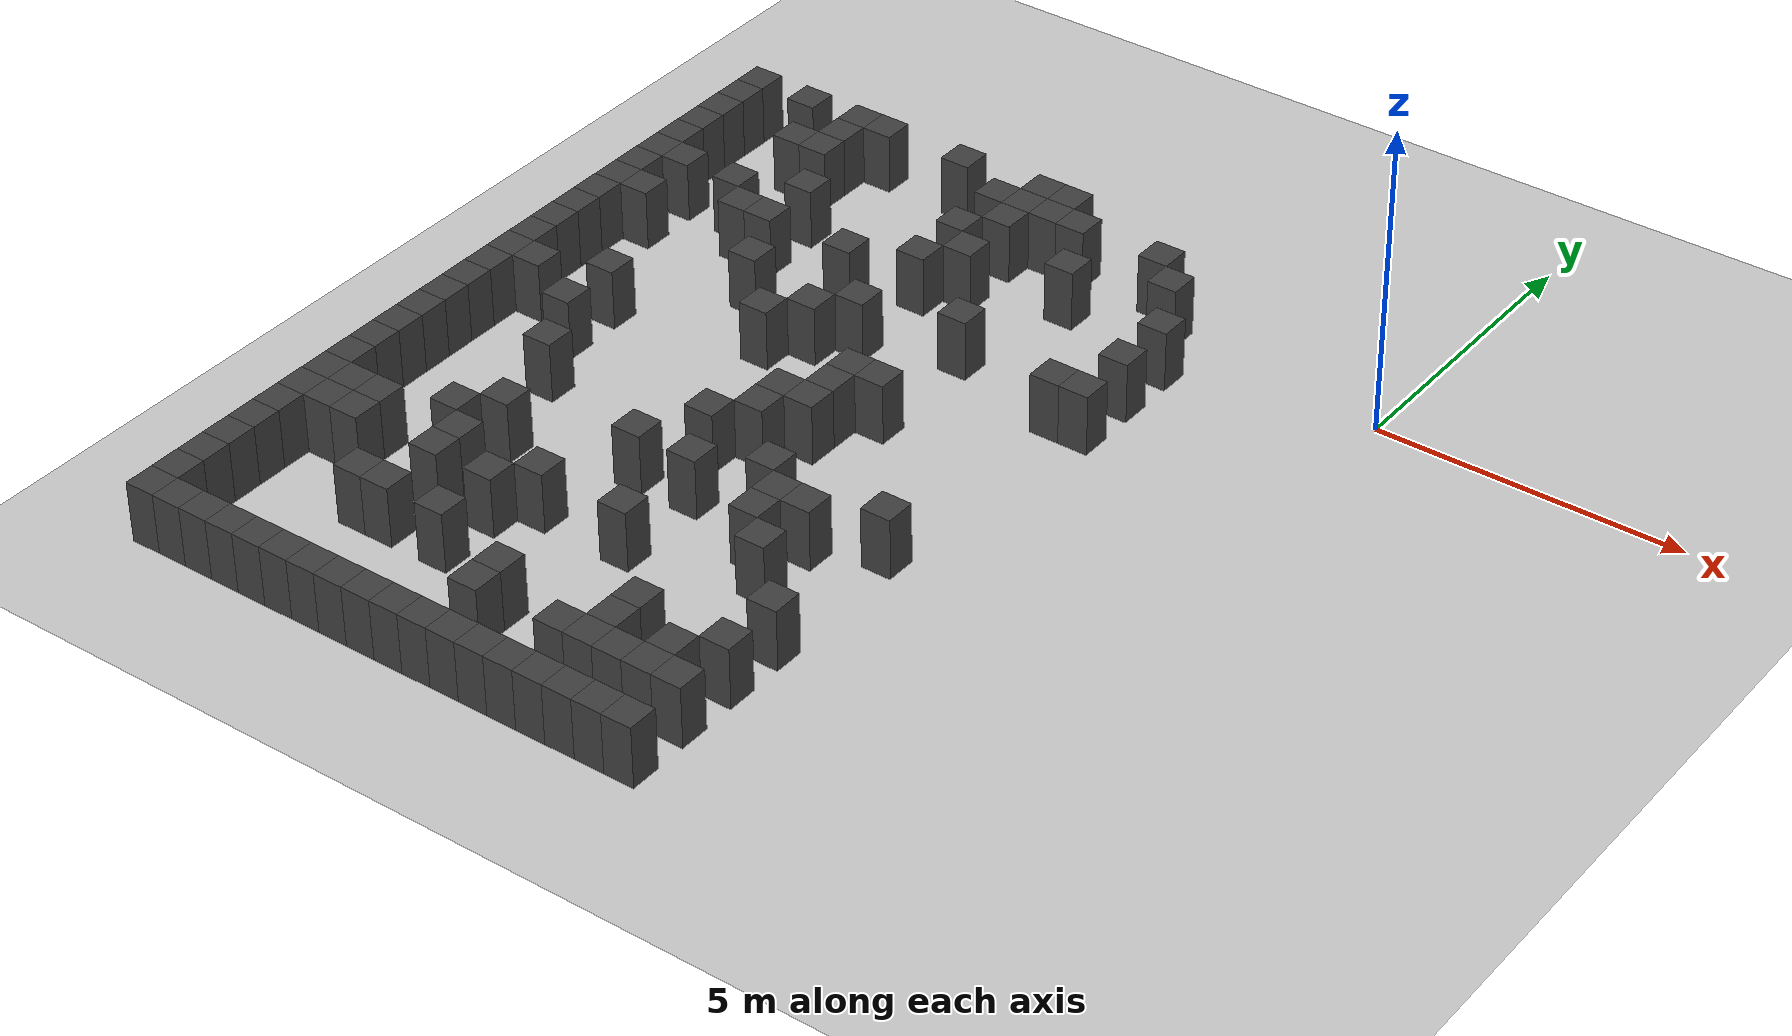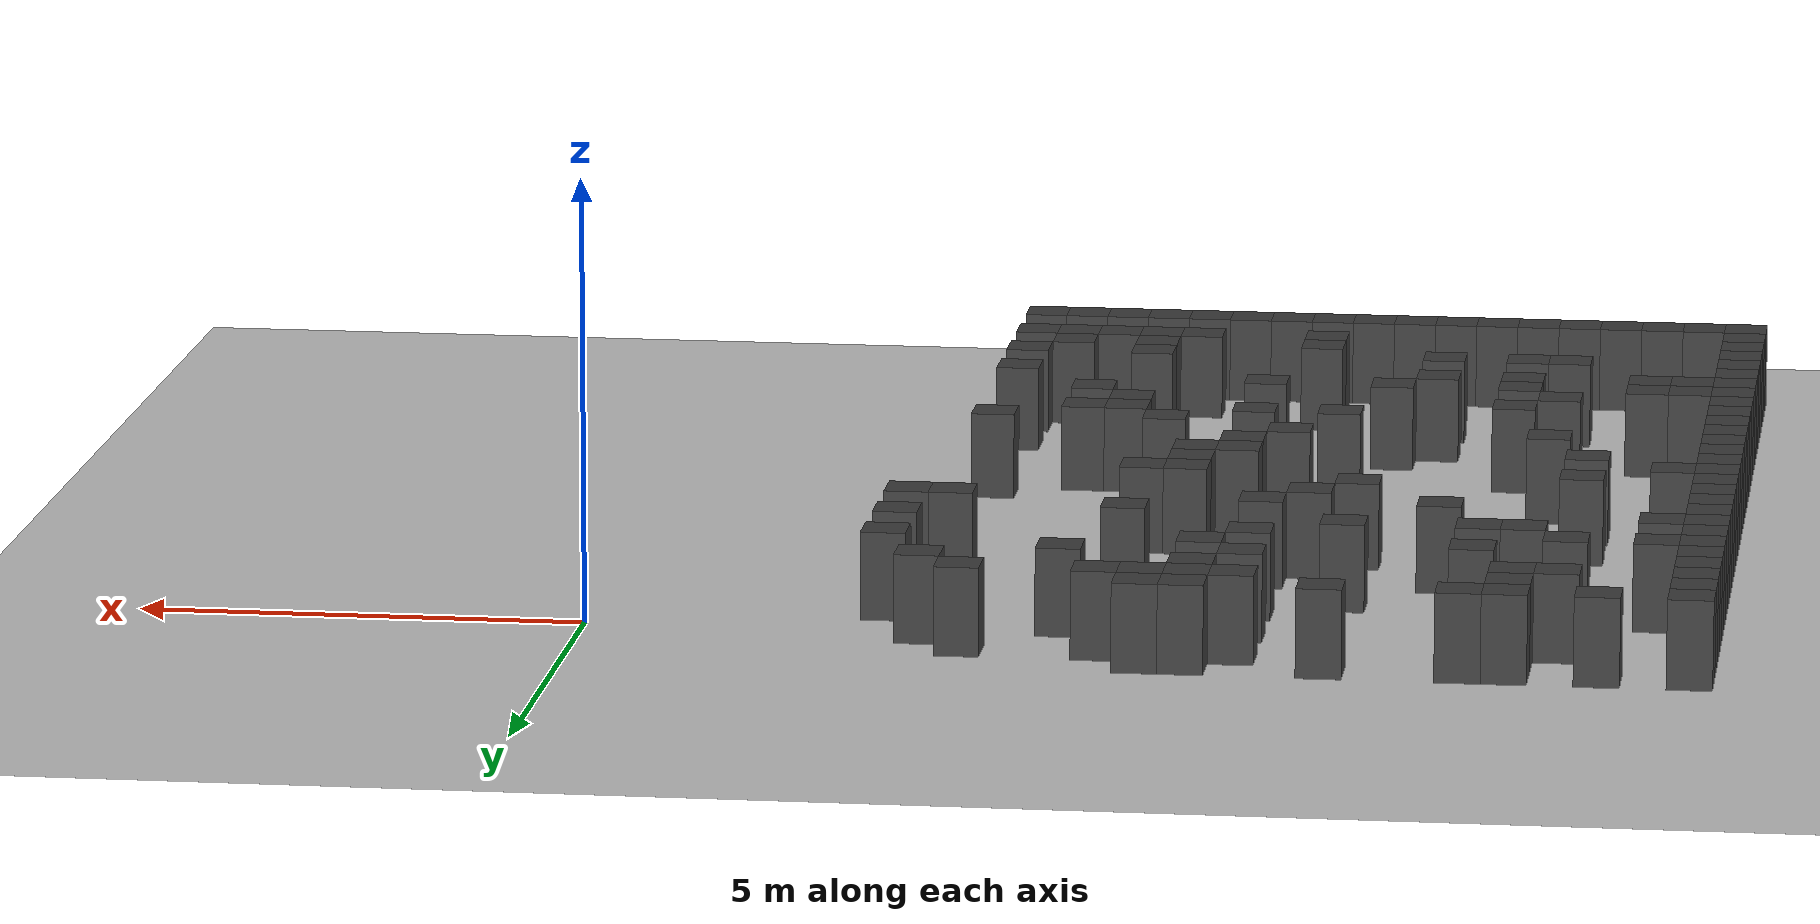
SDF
<sdf version="1.7">
 <world name="map_3891">
  <model name="ground_plane">
   <static>true</static>
   <link name="link">
    <collision name="collision">
     <geometry><plane><normal>0 0 1</normal><size>200 200</size></plane></geometry>
    </collision>
    <visual name="visual">
     <geometry><plane><normal>0 0 1</normal><size>200 200</size></plane></geometry>
     <material><ambient>0.8 0.8 0.8 1</ambient><diffuse>0.8 0.8 0.8 1</diffuse></material>
    </visual>
   </link>
  </model>
  <model name="maze_environment">
   <static>true</static>
   <link name="wall_296">
    <pose>-12.250 1.250 0.500 0 0 0</pose>
    <collision name="col"><geometry><box><size>0.5 0.5 1.0</size></box></geometry></collision>
    <visual name="vis">
     <geometry><box><size>0.5 0.5 1.0</size></box></geometry>
     <material><ambient>0.15 0.15 0.15 1</ambient><diffuse>0.25 0.25 0.25 1</diffuse></material>
    </visual>
   </link>
   <link name="wall_297">
    <pose>-11.250 1.250 0.500 0 0 0</pose>
    <collision name="col"><geometry><box><size>0.5 0.5 1.0</size></box></geometry></collision>
    <visual name="vis">
     <geometry><box><size>0.5 0.5 1.0</size></box></geometry>
     <material><ambient>0.15 0.15 0.15 1</ambient><diffuse>0.25 0.25 0.25 1</diffuse></material>
    </visual>
   </link>
   <link name="wall_298">
    <pose>-10.250 1.250 0.500 0 0 0</pose>
    <collision name="col"><geometry><box><size>0.5 0.5 1.0</size></box></geometry></collision>
    <visual name="vis">
     <geometry><box><size>0.5 0.5 1.0</size></box></geometry>
     <material><ambient>0.15 0.15 0.15 1</ambient><diffuse>0.25 0.25 0.25 1</diffuse></material>
    </visual>
   </link>
   <link name="wall_299">
    <pose>-9.750 1.250 0.500 0 0 0</pose>
    <collision name="col"><geometry><box><size>0.5 0.5 1.0</size></box></geometry></collision>
    <visual name="vis">
     <geometry><box><size>0.5 0.5 1.0</size></box></geometry>
     <material><ambient>0.15 0.15 0.15 1</ambient><diffuse>0.25 0.25 0.25 1</diffuse></material>
    </visual>
   </link>
   <link name="wall_300">
    <pose>-8.250 1.250 0.500 0 0 0</pose>
    <collision name="col"><geometry><box><size>0.5 0.5 1.0</size></box></geometry></collision>
    <visual name="vis">
     <geometry><box><size>0.5 0.5 1.0</size></box></geometry>
     <material><ambient>0.15 0.15 0.15 1</ambient><diffuse>0.25 0.25 0.25 1</diffuse></material>
    </visual>
   </link>
   <link name="wall_301">
    <pose>-6.750 1.250 0.500 0 0 0</pose>
    <collision name="col"><geometry><box><size>0.5 0.5 1.0</size></box></geometry></collision>
    <visual name="vis">
     <geometry><box><size>0.5 0.5 1.0</size></box></geometry>
     <material><ambient>0.15 0.15 0.15 1</ambient><diffuse>0.25 0.25 0.25 1</diffuse></material>
    </visual>
   </link>
   <link name="wall_302">
    <pose>-6.250 1.250 0.500 0 0 0</pose>
    <collision name="col"><geometry><box><size>0.5 0.5 1.0</size></box></geometry></collision>
    <visual name="vis">
     <geometry><box><size>0.5 0.5 1.0</size></box></geometry>
     <material><ambient>0.15 0.15 0.15 1</ambient><diffuse>0.25 0.25 0.25 1</diffuse></material>
    </visual>
   </link>
   <link name="wall_312">
    <pose>-12.250 0.750 0.500 0 0 0</pose>
    <collision name="col"><geometry><box><size>0.5 0.5 1.0</size></box></geometry></collision>
    <visual name="vis">
     <geometry><box><size>0.5 0.5 1.0</size></box></geometry>
     <material><ambient>0.15 0.15 0.15 1</ambient><diffuse>0.25 0.25 0.25 1</diffuse></material>
    </visual>
   </link>
   <link name="wall_313">
    <pose>-10.250 0.750 0.500 0 0 0</pose>
    <collision name="col"><geometry><box><size>0.5 0.5 1.0</size></box></geometry></collision>
    <visual name="vis">
     <geometry><box><size>0.5 0.5 1.0</size></box></geometry>
     <material><ambient>0.15 0.15 0.15 1</ambient><diffuse>0.25 0.25 0.25 1</diffuse></material>
    </visual>
   </link>
   <link name="wall_314">
    <pose>-7.250 0.750 0.500 0 0 0</pose>
    <collision name="col"><geometry><box><size>0.5 0.5 1.0</size></box></geometry></collision>
    <visual name="vis">
     <geometry><box><size>0.5 0.5 1.0</size></box></geometry>
     <material><ambient>0.15 0.15 0.15 1</ambient><diffuse>0.25 0.25 0.25 1</diffuse></material>
    </visual>
   </link>
   <link name="wall_315">
    <pose>-6.750 0.750 0.500 0 0 0</pose>
    <collision name="col"><geometry><box><size>0.5 0.5 1.0</size></box></geometry></collision>
    <visual name="vis">
     <geometry><box><size>0.5 0.5 1.0</size></box></geometry>
     <material><ambient>0.15 0.15 0.15 1</ambient><diffuse>0.25 0.25 0.25 1</diffuse></material>
    </visual>
   </link>
   <link name="wall_316">
    <pose>-6.250 0.750 0.500 0 0 0</pose>
    <collision name="col"><geometry><box><size>0.5 0.5 1.0</size></box></geometry></collision>
    <visual name="vis">
     <geometry><box><size>0.5 0.5 1.0</size></box></geometry>
     <material><ambient>0.15 0.15 0.15 1</ambient><diffuse>0.25 0.25 0.25 1</diffuse></material>
    </visual>
   </link>
   <link name="wall_317">
    <pose>-5.750 0.750 0.500 0 0 0</pose>
    <collision name="col"><geometry><box><size>0.5 0.5 1.0</size></box></geometry></collision>
    <visual name="vis">
     <geometry><box><size>0.5 0.5 1.0</size></box></geometry>
     <material><ambient>0.15 0.15 0.15 1</ambient><diffuse>0.25 0.25 0.25 1</diffuse></material>
    </visual>
   </link>
   <link name="wall_318">
    <pose>-4.250 0.750 0.500 0 0 0</pose>
    <collision name="col"><geometry><box><size>0.5 0.5 1.0</size></box></geometry></collision>
    <visual name="vis">
     <geometry><box><size>0.5 0.5 1.0</size></box></geometry>
     <material><ambient>0.15 0.15 0.15 1</ambient><diffuse>0.25 0.25 0.25 1</diffuse></material>
    </visual>
   </link>
   <link name="wall_324">
    <pose>-12.250 0.250 0.500 0 0 0</pose>
    <collision name="col"><geometry><box><size>0.5 0.5 1.0</size></box></geometry></collision>
    <visual name="vis">
     <geometry><box><size>0.5 0.5 1.0</size></box></geometry>
     <material><ambient>0.15 0.15 0.15 1</ambient><diffuse>0.25 0.25 0.25 1</diffuse></material>
    </visual>
   </link>
   <link name="wall_325">
    <pose>-10.750 0.250 0.500 0 0 0</pose>
    <collision name="col"><geometry><box><size>0.5 0.5 1.0</size></box></geometry></collision>
    <visual name="vis">
     <geometry><box><size>0.5 0.5 1.0</size></box></geometry>
     <material><ambient>0.15 0.15 0.15 1</ambient><diffuse>0.25 0.25 0.25 1</diffuse></material>
    </visual>
   </link>
   <link name="wall_326">
    <pose>-10.250 0.250 0.500 0 0 0</pose>
    <collision name="col"><geometry><box><size>0.5 0.5 1.0</size></box></geometry></collision>
    <visual name="vis">
     <geometry><box><size>0.5 0.5 1.0</size></box></geometry>
     <material><ambient>0.15 0.15 0.15 1</ambient><diffuse>0.25 0.25 0.25 1</diffuse></material>
    </visual>
   </link>
   <link name="wall_327">
    <pose>-6.750 0.250 0.500 0 0 0</pose>
    <collision name="col"><geometry><box><size>0.5 0.5 1.0</size></box></geometry></collision>
    <visual name="vis">
     <geometry><box><size>0.5 0.5 1.0</size></box></geometry>
     <material><ambient>0.15 0.15 0.15 1</ambient><diffuse>0.25 0.25 0.25 1</diffuse></material>
    </visual>
   </link>
   <link name="wall_328">
    <pose>-3.750 0.250 0.500 0 0 0</pose>
    <collision name="col"><geometry><box><size>0.5 0.5 1.0</size></box></geometry></collision>
    <visual name="vis">
     <geometry><box><size>0.5 0.5 1.0</size></box></geometry>
     <material><ambient>0.15 0.15 0.15 1</ambient><diffuse>0.25 0.25 0.25 1</diffuse></material>
    </visual>
   </link>
   <link name="wall_336">
    <pose>-12.250 -0.250 0.500 0 0 0</pose>
    <collision name="col"><geometry><box><size>0.5 0.5 1.0</size></box></geometry></collision>
    <visual name="vis">
     <geometry><box><size>0.5 0.5 1.0</size></box></geometry>
     <material><ambient>0.15 0.15 0.15 1</ambient><diffuse>0.25 0.25 0.25 1</diffuse></material>
    </visual>
   </link>
   <link name="wall_337">
    <pose>-7.250 -0.250 0.500 0 0 0</pose>
    <collision name="col"><geometry><box><size>0.5 0.5 1.0</size></box></geometry></collision>
    <visual name="vis">
     <geometry><box><size>0.5 0.5 1.0</size></box></geometry>
     <material><ambient>0.15 0.15 0.15 1</ambient><diffuse>0.25 0.25 0.25 1</diffuse></material>
    </visual>
   </link>
   <link name="wall_338">
    <pose>-5.250 -0.250 0.500 0 0 0</pose>
    <collision name="col"><geometry><box><size>0.5 0.5 1.0</size></box></geometry></collision>
    <visual name="vis">
     <geometry><box><size>0.5 0.5 1.0</size></box></geometry>
     <material><ambient>0.15 0.15 0.15 1</ambient><diffuse>0.25 0.25 0.25 1</diffuse></material>
    </visual>
   </link>
   <link name="wall_345">
    <pose>-12.250 -0.750 0.500 0 0 0</pose>
    <collision name="col"><geometry><box><size>0.5 0.5 1.0</size></box></geometry></collision>
    <visual name="vis">
     <geometry><box><size>0.5 0.5 1.0</size></box></geometry>
     <material><ambient>0.15 0.15 0.15 1</ambient><diffuse>0.25 0.25 0.25 1</diffuse></material>
    </visual>
   </link>
   <link name="wall_346">
    <pose>-9.750 -0.750 0.500 0 0 0</pose>
    <collision name="col"><geometry><box><size>0.5 0.5 1.0</size></box></geometry></collision>
    <visual name="vis">
     <geometry><box><size>0.5 0.5 1.0</size></box></geometry>
     <material><ambient>0.15 0.15 0.15 1</ambient><diffuse>0.25 0.25 0.25 1</diffuse></material>
    </visual>
   </link>
   <link name="wall_347">
    <pose>-6.750 -0.750 0.500 0 0 0</pose>
    <collision name="col"><geometry><box><size>0.5 0.5 1.0</size></box></geometry></collision>
    <visual name="vis">
     <geometry><box><size>0.5 0.5 1.0</size></box></geometry>
     <material><ambient>0.15 0.15 0.15 1</ambient><diffuse>0.25 0.25 0.25 1</diffuse></material>
    </visual>
   </link>
   <link name="wall_348">
    <pose>-3.250 -0.750 0.500 0 0 0</pose>
    <collision name="col"><geometry><box><size>0.5 0.5 1.0</size></box></geometry></collision>
    <visual name="vis">
     <geometry><box><size>0.5 0.5 1.0</size></box></geometry>
     <material><ambient>0.15 0.15 0.15 1</ambient><diffuse>0.25 0.25 0.25 1</diffuse></material>
    </visual>
   </link>
   <link name="wall_354">
    <pose>-12.250 -1.250 0.500 0 0 0</pose>
    <collision name="col"><geometry><box><size>0.5 0.5 1.0</size></box></geometry></collision>
    <visual name="vis">
     <geometry><box><size>0.5 0.5 1.0</size></box></geometry>
     <material><ambient>0.15 0.15 0.15 1</ambient><diffuse>0.25 0.25 0.25 1</diffuse></material>
    </visual>
   </link>
   <link name="wall_355">
    <pose>-11.750 -1.250 0.500 0 0 0</pose>
    <collision name="col"><geometry><box><size>0.5 0.5 1.0</size></box></geometry></collision>
    <visual name="vis">
     <geometry><box><size>0.5 0.5 1.0</size></box></geometry>
     <material><ambient>0.15 0.15 0.15 1</ambient><diffuse>0.25 0.25 0.25 1</diffuse></material>
    </visual>
   </link>
   <link name="wall_356">
    <pose>-10.750 -1.250 0.500 0 0 0</pose>
    <collision name="col"><geometry><box><size>0.5 0.5 1.0</size></box></geometry></collision>
    <visual name="vis">
     <geometry><box><size>0.5 0.5 1.0</size></box></geometry>
     <material><ambient>0.15 0.15 0.15 1</ambient><diffuse>0.25 0.25 0.25 1</diffuse></material>
    </visual>
   </link>
   <link name="wall_357">
    <pose>-7.250 -1.250 0.500 0 0 0</pose>
    <collision name="col"><geometry><box><size>0.5 0.5 1.0</size></box></geometry></collision>
    <visual name="vis">
     <geometry><box><size>0.5 0.5 1.0</size></box></geometry>
     <material><ambient>0.15 0.15 0.15 1</ambient><diffuse>0.25 0.25 0.25 1</diffuse></material>
    </visual>
   </link>
   <link name="wall_364">
    <pose>-12.250 -1.750 0.500 0 0 0</pose>
    <collision name="col"><geometry><box><size>0.5 0.5 1.0</size></box></geometry></collision>
    <visual name="vis">
     <geometry><box><size>0.5 0.5 1.0</size></box></geometry>
     <material><ambient>0.15 0.15 0.15 1</ambient><diffuse>0.25 0.25 0.25 1</diffuse></material>
    </visual>
   </link>
   <link name="wall_365">
    <pose>-10.250 -1.750 0.500 0 0 0</pose>
    <collision name="col"><geometry><box><size>0.5 0.5 1.0</size></box></geometry></collision>
    <visual name="vis">
     <geometry><box><size>0.5 0.5 1.0</size></box></geometry>
     <material><ambient>0.15 0.15 0.15 1</ambient><diffuse>0.25 0.25 0.25 1</diffuse></material>
    </visual>
   </link>
   <link name="wall_366">
    <pose>-9.750 -1.750 0.500 0 0 0</pose>
    <collision name="col"><geometry><box><size>0.5 0.5 1.0</size></box></geometry></collision>
    <visual name="vis">
     <geometry><box><size>0.5 0.5 1.0</size></box></geometry>
     <material><ambient>0.15 0.15 0.15 1</ambient><diffuse>0.25 0.25 0.25 1</diffuse></material>
    </visual>
   </link>
   <link name="wall_367">
    <pose>-8.250 -1.750 0.500 0 0 0</pose>
    <collision name="col"><geometry><box><size>0.5 0.5 1.0</size></box></geometry></collision>
    <visual name="vis">
     <geometry><box><size>0.5 0.5 1.0</size></box></geometry>
     <material><ambient>0.15 0.15 0.15 1</ambient><diffuse>0.25 0.25 0.25 1</diffuse></material>
    </visual>
   </link>
   <link name="wall_368">
    <pose>-3.250 -1.750 0.500 0 0 0</pose>
    <collision name="col"><geometry><box><size>0.5 0.5 1.0</size></box></geometry></collision>
    <visual name="vis">
     <geometry><box><size>0.5 0.5 1.0</size></box></geometry>
     <material><ambient>0.15 0.15 0.15 1</ambient><diffuse>0.25 0.25 0.25 1</diffuse></material>
    </visual>
   </link>
   <link name="wall_375">
    <pose>-12.250 -2.250 0.500 0 0 0</pose>
    <collision name="col"><geometry><box><size>0.5 0.5 1.0</size></box></geometry></collision>
    <visual name="vis">
     <geometry><box><size>0.5 0.5 1.0</size></box></geometry>
     <material><ambient>0.15 0.15 0.15 1</ambient><diffuse>0.25 0.25 0.25 1</diffuse></material>
    </visual>
   </link>
   <link name="wall_376">
    <pose>-11.750 -2.250 0.500 0 0 0</pose>
    <collision name="col"><geometry><box><size>0.5 0.5 1.0</size></box></geometry></collision>
    <visual name="vis">
     <geometry><box><size>0.5 0.5 1.0</size></box></geometry>
     <material><ambient>0.15 0.15 0.15 1</ambient><diffuse>0.25 0.25 0.25 1</diffuse></material>
    </visual>
   </link>
   <link name="wall_377">
    <pose>-5.750 -2.250 0.500 0 0 0</pose>
    <collision name="col"><geometry><box><size>0.5 0.5 1.0</size></box></geometry></collision>
    <visual name="vis">
     <geometry><box><size>0.5 0.5 1.0</size></box></geometry>
     <material><ambient>0.15 0.15 0.15 1</ambient><diffuse>0.25 0.25 0.25 1</diffuse></material>
    </visual>
   </link>
   <link name="wall_386">
    <pose>-12.250 -2.750 0.500 0 0 0</pose>
    <collision name="col"><geometry><box><size>0.5 0.5 1.0</size></box></geometry></collision>
    <visual name="vis">
     <geometry><box><size>0.5 0.5 1.0</size></box></geometry>
     <material><ambient>0.15 0.15 0.15 1</ambient><diffuse>0.25 0.25 0.25 1</diffuse></material>
    </visual>
   </link>
   <link name="wall_387">
    <pose>-9.250 -2.750 0.500 0 0 0</pose>
    <collision name="col"><geometry><box><size>0.5 0.5 1.0</size></box></geometry></collision>
    <visual name="vis">
     <geometry><box><size>0.5 0.5 1.0</size></box></geometry>
     <material><ambient>0.15 0.15 0.15 1</ambient><diffuse>0.25 0.25 0.25 1</diffuse></material>
    </visual>
   </link>
   <link name="wall_388">
    <pose>-7.250 -2.750 0.500 0 0 0</pose>
    <collision name="col"><geometry><box><size>0.5 0.5 1.0</size></box></geometry></collision>
    <visual name="vis">
     <geometry><box><size>0.5 0.5 1.0</size></box></geometry>
     <material><ambient>0.15 0.15 0.15 1</ambient><diffuse>0.25 0.25 0.25 1</diffuse></material>
    </visual>
   </link>
   <link name="wall_389">
    <pose>-3.750 -2.750 0.500 0 0 0</pose>
    <collision name="col"><geometry><box><size>0.5 0.5 1.0</size></box></geometry></collision>
    <visual name="vis">
     <geometry><box><size>0.5 0.5 1.0</size></box></geometry>
     <material><ambient>0.15 0.15 0.15 1</ambient><diffuse>0.25 0.25 0.25 1</diffuse></material>
    </visual>
   </link>
   <link name="wall_390">
    <pose>-3.250 -2.750 0.500 0 0 0</pose>
    <collision name="col"><geometry><box><size>0.5 0.5 1.0</size></box></geometry></collision>
    <visual name="vis">
     <geometry><box><size>0.5 0.5 1.0</size></box></geometry>
     <material><ambient>0.15 0.15 0.15 1</ambient><diffuse>0.25 0.25 0.25 1</diffuse></material>
    </visual>
   </link>
   <link name="wall_395">
    <pose>-12.250 -3.250 0.500 0 0 0</pose>
    <collision name="col"><geometry><box><size>0.5 0.5 1.0</size></box></geometry></collision>
    <visual name="vis">
     <geometry><box><size>0.5 0.5 1.0</size></box></geometry>
     <material><ambient>0.15 0.15 0.15 1</ambient><diffuse>0.25 0.25 0.25 1</diffuse></material>
    </visual>
   </link>
   <link name="wall_396">
    <pose>-7.750 -3.250 0.500 0 0 0</pose>
    <collision name="col"><geometry><box><size>0.5 0.5 1.0</size></box></geometry></collision>
    <visual name="vis">
     <geometry><box><size>0.5 0.5 1.0</size></box></geometry>
     <material><ambient>0.15 0.15 0.15 1</ambient><diffuse>0.25 0.25 0.25 1</diffuse></material>
    </visual>
   </link>
   <link name="wall_407">
    <pose>-12.250 -3.750 0.500 0 0 0</pose>
    <collision name="col"><geometry><box><size>0.5 0.5 1.0</size></box></geometry></collision>
    <visual name="vis">
     <geometry><box><size>0.5 0.5 1.0</size></box></geometry>
     <material><ambient>0.15 0.15 0.15 1</ambient><diffuse>0.25 0.25 0.25 1</diffuse></material>
    </visual>
   </link>
   <link name="wall_408">
    <pose>-8.250 -3.750 0.500 0 0 0</pose>
    <collision name="col"><geometry><box><size>0.5 0.5 1.0</size></box></geometry></collision>
    <visual name="vis">
     <geometry><box><size>0.5 0.5 1.0</size></box></geometry>
     <material><ambient>0.15 0.15 0.15 1</ambient><diffuse>0.25 0.25 0.25 1</diffuse></material>
    </visual>
   </link>
   <link name="wall_415">
    <pose>-12.250 -4.250 0.500 0 0 0</pose>
    <collision name="col"><geometry><box><size>0.5 0.5 1.0</size></box></geometry></collision>
    <visual name="vis">
     <geometry><box><size>0.5 0.5 1.0</size></box></geometry>
     <material><ambient>0.15 0.15 0.15 1</ambient><diffuse>0.25 0.25 0.25 1</diffuse></material>
    </visual>
   </link>
   <link name="wall_416">
    <pose>-10.750 -4.250 0.500 0 0 0</pose>
    <collision name="col"><geometry><box><size>0.5 0.5 1.0</size></box></geometry></collision>
    <visual name="vis">
     <geometry><box><size>0.5 0.5 1.0</size></box></geometry>
     <material><ambient>0.15 0.15 0.15 1</ambient><diffuse>0.25 0.25 0.25 1</diffuse></material>
    </visual>
   </link>
   <link name="wall_417">
    <pose>-6.250 -4.250 0.500 0 0 0</pose>
    <collision name="col"><geometry><box><size>0.5 0.5 1.0</size></box></geometry></collision>
    <visual name="vis">
     <geometry><box><size>0.5 0.5 1.0</size></box></geometry>
     <material><ambient>0.15 0.15 0.15 1</ambient><diffuse>0.25 0.25 0.25 1</diffuse></material>
    </visual>
   </link>
   <link name="wall_418">
    <pose>-5.750 -4.250 0.500 0 0 0</pose>
    <collision name="col"><geometry><box><size>0.5 0.5 1.0</size></box></geometry></collision>
    <visual name="vis">
     <geometry><box><size>0.5 0.5 1.0</size></box></geometry>
     <material><ambient>0.15 0.15 0.15 1</ambient><diffuse>0.25 0.25 0.25 1</diffuse></material>
    </visual>
   </link>
   <link name="wall_423">
    <pose>-12.250 -4.750 0.500 0 0 0</pose>
    <collision name="col"><geometry><box><size>0.5 0.5 1.0</size></box></geometry></collision>
    <visual name="vis">
     <geometry><box><size>0.5 0.5 1.0</size></box></geometry>
     <material><ambient>0.15 0.15 0.15 1</ambient><diffuse>0.25 0.25 0.25 1</diffuse></material>
    </visual>
   </link>
   <link name="wall_424">
    <pose>-11.750 -4.750 0.500 0 0 0</pose>
    <collision name="col"><geometry><box><size>0.5 0.5 1.0</size></box></geometry></collision>
    <visual name="vis">
     <geometry><box><size>0.5 0.5 1.0</size></box></geometry>
     <material><ambient>0.15 0.15 0.15 1</ambient><diffuse>0.25 0.25 0.25 1</diffuse></material>
    </visual>
   </link>
   <link name="wall_425">
    <pose>-6.250 -4.750 0.500 0 0 0</pose>
    <collision name="col"><geometry><box><size>0.5 0.5 1.0</size></box></geometry></collision>
    <visual name="vis">
     <geometry><box><size>0.5 0.5 1.0</size></box></geometry>
     <material><ambient>0.15 0.15 0.15 1</ambient><diffuse>0.25 0.25 0.25 1</diffuse></material>
    </visual>
   </link>
   <link name="wall_429">
    <pose>-12.250 -5.250 0.500 0 0 0</pose>
    <collision name="col"><geometry><box><size>0.5 0.5 1.0</size></box></geometry></collision>
    <visual name="vis">
     <geometry><box><size>0.5 0.5 1.0</size></box></geometry>
     <material><ambient>0.15 0.15 0.15 1</ambient><diffuse>0.25 0.25 0.25 1</diffuse></material>
    </visual>
   </link>
   <link name="wall_430">
    <pose>-10.750 -5.250 0.500 0 0 0</pose>
    <collision name="col"><geometry><box><size>0.5 0.5 1.0</size></box></geometry></collision>
    <visual name="vis">
     <geometry><box><size>0.5 0.5 1.0</size></box></geometry>
     <material><ambient>0.15 0.15 0.15 1</ambient><diffuse>0.25 0.25 0.25 1</diffuse></material>
    </visual>
   </link>
   <link name="wall_431">
    <pose>-6.750 -5.250 0.500 0 0 0</pose>
    <collision name="col"><geometry><box><size>0.5 0.5 1.0</size></box></geometry></collision>
    <visual name="vis">
     <geometry><box><size>0.5 0.5 1.0</size></box></geometry>
     <material><ambient>0.15 0.15 0.15 1</ambient><diffuse>0.25 0.25 0.25 1</diffuse></material>
    </visual>
   </link>
   <link name="wall_432">
    <pose>-6.250 -5.250 0.500 0 0 0</pose>
    <collision name="col"><geometry><box><size>0.5 0.5 1.0</size></box></geometry></collision>
    <visual name="vis">
     <geometry><box><size>0.5 0.5 1.0</size></box></geometry>
     <material><ambient>0.15 0.15 0.15 1</ambient><diffuse>0.25 0.25 0.25 1</diffuse></material>
    </visual>
   </link>
   <link name="wall_438">
    <pose>-12.250 -5.750 0.500 0 0 0</pose>
    <collision name="col"><geometry><box><size>0.5 0.5 1.0</size></box></geometry></collision>
    <visual name="vis">
     <geometry><box><size>0.5 0.5 1.0</size></box></geometry>
     <material><ambient>0.15 0.15 0.15 1</ambient><diffuse>0.25 0.25 0.25 1</diffuse></material>
    </visual>
   </link>
   <link name="wall_439">
    <pose>-6.750 -5.750 0.500 0 0 0</pose>
    <collision name="col"><geometry><box><size>0.5 0.5 1.0</size></box></geometry></collision>
    <visual name="vis">
     <geometry><box><size>0.5 0.5 1.0</size></box></geometry>
     <material><ambient>0.15 0.15 0.15 1</ambient><diffuse>0.25 0.25 0.25 1</diffuse></material>
    </visual>
   </link>
   <link name="wall_445">
    <pose>-12.250 -6.250 0.500 0 0 0</pose>
    <collision name="col"><geometry><box><size>0.5 0.5 1.0</size></box></geometry></collision>
    <visual name="vis">
     <geometry><box><size>0.5 0.5 1.0</size></box></geometry>
     <material><ambient>0.15 0.15 0.15 1</ambient><diffuse>0.25 0.25 0.25 1</diffuse></material>
    </visual>
   </link>
   <link name="wall_446">
    <pose>-10.250 -6.250 0.500 0 0 0</pose>
    <collision name="col"><geometry><box><size>0.5 0.5 1.0</size></box></geometry></collision>
    <visual name="vis">
     <geometry><box><size>0.5 0.5 1.0</size></box></geometry>
     <material><ambient>0.15 0.15 0.15 1</ambient><diffuse>0.25 0.25 0.25 1</diffuse></material>
    </visual>
   </link>
   <link name="wall_447">
    <pose>-7.250 -6.250 0.500 0 0 0</pose>
    <collision name="col"><geometry><box><size>0.5 0.5 1.0</size></box></geometry></collision>
    <visual name="vis">
     <geometry><box><size>0.5 0.5 1.0</size></box></geometry>
     <material><ambient>0.15 0.15 0.15 1</ambient><diffuse>0.25 0.25 0.25 1</diffuse></material>
    </visual>
   </link>
   <link name="wall_454">
    <pose>-12.250 -6.750 0.500 0 0 0</pose>
    <collision name="col"><geometry><box><size>0.5 0.5 1.0</size></box></geometry></collision>
    <visual name="vis">
     <geometry><box><size>0.5 0.5 1.0</size></box></geometry>
     <material><ambient>0.15 0.15 0.15 1</ambient><diffuse>0.25 0.25 0.25 1</diffuse></material>
    </visual>
   </link>
   <link name="wall_455">
    <pose>-5.750 -6.750 0.500 0 0 0</pose>
    <collision name="col"><geometry><box><size>0.5 0.5 1.0</size></box></geometry></collision>
    <visual name="vis">
     <geometry><box><size>0.5 0.5 1.0</size></box></geometry>
     <material><ambient>0.15 0.15 0.15 1</ambient><diffuse>0.25 0.25 0.25 1</diffuse></material>
    </visual>
   </link>
   <link name="wall_456">
    <pose>-3.750 -6.750 0.500 0 0 0</pose>
    <collision name="col"><geometry><box><size>0.5 0.5 1.0</size></box></geometry></collision>
    <visual name="vis">
     <geometry><box><size>0.5 0.5 1.0</size></box></geometry>
     <material><ambient>0.15 0.15 0.15 1</ambient><diffuse>0.25 0.25 0.25 1</diffuse></material>
    </visual>
   </link>
   <link name="wall_463">
    <pose>-12.250 -7.250 0.500 0 0 0</pose>
    <collision name="col"><geometry><box><size>0.5 0.5 1.0</size></box></geometry></collision>
    <visual name="vis">
     <geometry><box><size>0.5 0.5 1.0</size></box></geometry>
     <material><ambient>0.15 0.15 0.15 1</ambient><diffuse>0.25 0.25 0.25 1</diffuse></material>
    </visual>
   </link>
   <link name="wall_464">
    <pose>-7.750 -7.250 0.500 0 0 0</pose>
    <collision name="col"><geometry><box><size>0.5 0.5 1.0</size></box></geometry></collision>
    <visual name="vis">
     <geometry><box><size>0.5 0.5 1.0</size></box></geometry>
     <material><ambient>0.15 0.15 0.15 1</ambient><diffuse>0.25 0.25 0.25 1</diffuse></material>
    </visual>
   </link>
   <link name="wall_465">
    <pose>-6.750 -7.250 0.500 0 0 0</pose>
    <collision name="col"><geometry><box><size>0.5 0.5 1.0</size></box></geometry></collision>
    <visual name="vis">
     <geometry><box><size>0.5 0.5 1.0</size></box></geometry>
     <material><ambient>0.15 0.15 0.15 1</ambient><diffuse>0.25 0.25 0.25 1</diffuse></material>
    </visual>
   </link>
   <link name="wall_466">
    <pose>-5.250 -7.250 0.500 0 0 0</pose>
    <collision name="col"><geometry><box><size>0.5 0.5 1.0</size></box></geometry></collision>
    <visual name="vis">
     <geometry><box><size>0.5 0.5 1.0</size></box></geometry>
     <material><ambient>0.15 0.15 0.15 1</ambient><diffuse>0.25 0.25 0.25 1</diffuse></material>
    </visual>
   </link>
   <link name="wall_467">
    <pose>-4.750 -7.250 0.500 0 0 0</pose>
    <collision name="col"><geometry><box><size>0.5 0.5 1.0</size></box></geometry></collision>
    <visual name="vis">
     <geometry><box><size>0.5 0.5 1.0</size></box></geometry>
     <material><ambient>0.15 0.15 0.15 1</ambient><diffuse>0.25 0.25 0.25 1</diffuse></material>
    </visual>
   </link>
   <link name="wall_474">
    <pose>-12.250 -7.750 0.500 0 0 0</pose>
    <collision name="col"><geometry><box><size>0.5 0.5 1.0</size></box></geometry></collision>
    <visual name="vis">
     <geometry><box><size>0.5 0.5 1.0</size></box></geometry>
     <material><ambient>0.15 0.15 0.15 1</ambient><diffuse>0.25 0.25 0.25 1</diffuse></material>
    </visual>
   </link>
   <link name="wall_475">
    <pose>-9.750 -7.750 0.500 0 0 0</pose>
    <collision name="col"><geometry><box><size>0.5 0.5 1.0</size></box></geometry></collision>
    <visual name="vis">
     <geometry><box><size>0.5 0.5 1.0</size></box></geometry>
     <material><ambient>0.15 0.15 0.15 1</ambient><diffuse>0.25 0.25 0.25 1</diffuse></material>
    </visual>
   </link>
   <link name="wall_476">
    <pose>-5.250 -7.750 0.500 0 0 0</pose>
    <collision name="col"><geometry><box><size>0.5 0.5 1.0</size></box></geometry></collision>
    <visual name="vis">
     <geometry><box><size>0.5 0.5 1.0</size></box></geometry>
     <material><ambient>0.15 0.15 0.15 1</ambient><diffuse>0.25 0.25 0.25 1</diffuse></material>
    </visual>
   </link>
   <link name="wall_485">
    <pose>-12.250 -8.250 0.500 0 0 0</pose>
    <collision name="col"><geometry><box><size>0.5 0.5 1.0</size></box></geometry></collision>
    <visual name="vis">
     <geometry><box><size>0.5 0.5 1.0</size></box></geometry>
     <material><ambient>0.15 0.15 0.15 1</ambient><diffuse>0.25 0.25 0.25 1</diffuse></material>
    </visual>
   </link>
   <link name="wall_486">
    <pose>-10.250 -8.250 0.500 0 0 0</pose>
    <collision name="col"><geometry><box><size>0.5 0.5 1.0</size></box></geometry></collision>
    <visual name="vis">
     <geometry><box><size>0.5 0.5 1.0</size></box></geometry>
     <material><ambient>0.15 0.15 0.15 1</ambient><diffuse>0.25 0.25 0.25 1</diffuse></material>
    </visual>
   </link>
   <link name="wall_487">
    <pose>-4.750 -8.250 0.500 0 0 0</pose>
    <collision name="col"><geometry><box><size>0.5 0.5 1.0</size></box></geometry></collision>
    <visual name="vis">
     <geometry><box><size>0.5 0.5 1.0</size></box></geometry>
     <material><ambient>0.15 0.15 0.15 1</ambient><diffuse>0.25 0.25 0.25 1</diffuse></material>
    </visual>
   </link>
   <link name="wall_496">
    <pose>-12.250 -8.750 0.500 0 0 0</pose>
    <collision name="col"><geometry><box><size>0.5 0.5 1.0</size></box></geometry></collision>
    <visual name="vis">
     <geometry><box><size>0.5 0.5 1.0</size></box></geometry>
     <material><ambient>0.15 0.15 0.15 1</ambient><diffuse>0.25 0.25 0.25 1</diffuse></material>
    </visual>
   </link>
   <link name="wall_497">
    <pose>-11.750 -8.750 0.500 0 0 0</pose>
    <collision name="col"><geometry><box><size>0.5 0.5 1.0</size></box></geometry></collision>
    <visual name="vis">
     <geometry><box><size>0.5 0.5 1.0</size></box></geometry>
     <material><ambient>0.15 0.15 0.15 1</ambient><diffuse>0.25 0.25 0.25 1</diffuse></material>
    </visual>
   </link>
   <link name="wall_498">
    <pose>-11.250 -8.750 0.500 0 0 0</pose>
    <collision name="col"><geometry><box><size>0.5 0.5 1.0</size></box></geometry></collision>
    <visual name="vis">
     <geometry><box><size>0.5 0.5 1.0</size></box></geometry>
     <material><ambient>0.15 0.15 0.15 1</ambient><diffuse>0.25 0.25 0.25 1</diffuse></material>
    </visual>
   </link>
   <link name="wall_499">
    <pose>-9.750 -8.750 0.500 0 0 0</pose>
    <collision name="col"><geometry><box><size>0.5 0.5 1.0</size></box></geometry></collision>
    <visual name="vis">
     <geometry><box><size>0.5 0.5 1.0</size></box></geometry>
     <material><ambient>0.15 0.15 0.15 1</ambient><diffuse>0.25 0.25 0.25 1</diffuse></material>
    </visual>
   </link>
   <link name="wall_500">
    <pose>-8.250 -8.750 0.500 0 0 0</pose>
    <collision name="col"><geometry><box><size>0.5 0.5 1.0</size></box></geometry></collision>
    <visual name="vis">
     <geometry><box><size>0.5 0.5 1.0</size></box></geometry>
     <material><ambient>0.15 0.15 0.15 1</ambient><diffuse>0.25 0.25 0.25 1</diffuse></material>
    </visual>
   </link>
   <link name="wall_501">
    <pose>-6.750 -8.750 0.500 0 0 0</pose>
    <collision name="col"><geometry><box><size>0.5 0.5 1.0</size></box></geometry></collision>
    <visual name="vis">
     <geometry><box><size>0.5 0.5 1.0</size></box></geometry>
     <material><ambient>0.15 0.15 0.15 1</ambient><diffuse>0.25 0.25 0.25 1</diffuse></material>
    </visual>
   </link>
   <link name="wall_515">
    <pose>-12.250 -9.250 0.500 0 0 0</pose>
    <collision name="col"><geometry><box><size>0.5 0.5 1.0</size></box></geometry></collision>
    <visual name="vis">
     <geometry><box><size>0.5 0.5 1.0</size></box></geometry>
     <material><ambient>0.15 0.15 0.15 1</ambient><diffuse>0.25 0.25 0.25 1</diffuse></material>
    </visual>
   </link>
   <link name="wall_516">
    <pose>-11.750 -9.250 0.500 0 0 0</pose>
    <collision name="col"><geometry><box><size>0.5 0.5 1.0</size></box></geometry></collision>
    <visual name="vis">
     <geometry><box><size>0.5 0.5 1.0</size></box></geometry>
     <material><ambient>0.15 0.15 0.15 1</ambient><diffuse>0.25 0.25 0.25 1</diffuse></material>
    </visual>
   </link>
   <link name="wall_517">
    <pose>-11.250 -9.250 0.500 0 0 0</pose>
    <collision name="col"><geometry><box><size>0.5 0.5 1.0</size></box></geometry></collision>
    <visual name="vis">
     <geometry><box><size>0.5 0.5 1.0</size></box></geometry>
     <material><ambient>0.15 0.15 0.15 1</ambient><diffuse>0.25 0.25 0.25 1</diffuse></material>
    </visual>
   </link>
   <link name="wall_518">
    <pose>-9.750 -9.250 0.500 0 0 0</pose>
    <collision name="col"><geometry><box><size>0.5 0.5 1.0</size></box></geometry></collision>
    <visual name="vis">
     <geometry><box><size>0.5 0.5 1.0</size></box></geometry>
     <material><ambient>0.15 0.15 0.15 1</ambient><diffuse>0.25 0.25 0.25 1</diffuse></material>
    </visual>
   </link>
   <link name="wall_519">
    <pose>-8.750 -9.250 0.500 0 0 0</pose>
    <collision name="col"><geometry><box><size>0.5 0.5 1.0</size></box></geometry></collision>
    <visual name="vis">
     <geometry><box><size>0.5 0.5 1.0</size></box></geometry>
     <material><ambient>0.15 0.15 0.15 1</ambient><diffuse>0.25 0.25 0.25 1</diffuse></material>
    </visual>
   </link>
   <link name="wall_520">
    <pose>-3.750 -9.250 0.500 0 0 0</pose>
    <collision name="col"><geometry><box><size>0.5 0.5 1.0</size></box></geometry></collision>
    <visual name="vis">
     <geometry><box><size>0.5 0.5 1.0</size></box></geometry>
     <material><ambient>0.15 0.15 0.15 1</ambient><diffuse>0.25 0.25 0.25 1</diffuse></material>
    </visual>
   </link>
   <link name="wall_527">
    <pose>-12.250 -9.750 0.500 0 0 0</pose>
    <collision name="col"><geometry><box><size>0.5 0.5 1.0</size></box></geometry></collision>
    <visual name="vis">
     <geometry><box><size>0.5 0.5 1.0</size></box></geometry>
     <material><ambient>0.15 0.15 0.15 1</ambient><diffuse>0.25 0.25 0.25 1</diffuse></material>
    </visual>
   </link>
   <link name="wall_533">
    <pose>-12.250 -10.250 0.500 0 0 0</pose>
    <collision name="col"><geometry><box><size>0.5 0.5 1.0</size></box></geometry></collision>
    <visual name="vis">
     <geometry><box><size>0.5 0.5 1.0</size></box></geometry>
     <material><ambient>0.15 0.15 0.15 1</ambient><diffuse>0.25 0.25 0.25 1</diffuse></material>
    </visual>
   </link>
   <link name="wall_534">
    <pose>-10.250 -10.250 0.500 0 0 0</pose>
    <collision name="col"><geometry><box><size>0.5 0.5 1.0</size></box></geometry></collision>
    <visual name="vis">
     <geometry><box><size>0.5 0.5 1.0</size></box></geometry>
     <material><ambient>0.15 0.15 0.15 1</ambient><diffuse>0.25 0.25 0.25 1</diffuse></material>
    </visual>
   </link>
   <link name="wall_535">
    <pose>-9.750 -10.250 0.500 0 0 0</pose>
    <collision name="col"><geometry><box><size>0.5 0.5 1.0</size></box></geometry></collision>
    <visual name="vis">
     <geometry><box><size>0.5 0.5 1.0</size></box></geometry>
     <material><ambient>0.15 0.15 0.15 1</ambient><diffuse>0.25 0.25 0.25 1</diffuse></material>
    </visual>
   </link>
   <link name="wall_536">
    <pose>-8.750 -10.250 0.500 0 0 0</pose>
    <collision name="col"><geometry><box><size>0.5 0.5 1.0</size></box></geometry></collision>
    <visual name="vis">
     <geometry><box><size>0.5 0.5 1.0</size></box></geometry>
     <material><ambient>0.15 0.15 0.15 1</ambient><diffuse>0.25 0.25 0.25 1</diffuse></material>
    </visual>
   </link>
   <link name="wall_537">
    <pose>-5.250 -10.250 0.500 0 0 0</pose>
    <collision name="col"><geometry><box><size>0.5 0.5 1.0</size></box></geometry></collision>
    <visual name="vis">
     <geometry><box><size>0.5 0.5 1.0</size></box></geometry>
     <material><ambient>0.15 0.15 0.15 1</ambient><diffuse>0.25 0.25 0.25 1</diffuse></material>
    </visual>
   </link>
   <link name="wall_538">
    <pose>-3.750 -10.250 0.500 0 0 0</pose>
    <collision name="col"><geometry><box><size>0.5 0.5 1.0</size></box></geometry></collision>
    <visual name="vis">
     <geometry><box><size>0.5 0.5 1.0</size></box></geometry>
     <material><ambient>0.15 0.15 0.15 1</ambient><diffuse>0.25 0.25 0.25 1</diffuse></material>
    </visual>
   </link>
   <link name="wall_546">
    <pose>-12.250 -10.750 0.500 0 0 0</pose>
    <collision name="col"><geometry><box><size>0.5 0.5 1.0</size></box></geometry></collision>
    <visual name="vis">
     <geometry><box><size>0.5 0.5 1.0</size></box></geometry>
     <material><ambient>0.15 0.15 0.15 1</ambient><diffuse>0.25 0.25 0.25 1</diffuse></material>
    </visual>
   </link>
   <link name="wall_547">
    <pose>-7.250 -10.750 0.500 0 0 0</pose>
    <collision name="col"><geometry><box><size>0.5 0.5 1.0</size></box></geometry></collision>
    <visual name="vis">
     <geometry><box><size>0.5 0.5 1.0</size></box></geometry>
     <material><ambient>0.15 0.15 0.15 1</ambient><diffuse>0.25 0.25 0.25 1</diffuse></material>
    </visual>
   </link>
   <link name="wall_548">
    <pose>-5.250 -10.750 0.500 0 0 0</pose>
    <collision name="col"><geometry><box><size>0.5 0.5 1.0</size></box></geometry></collision>
    <visual name="vis">
     <geometry><box><size>0.5 0.5 1.0</size></box></geometry>
     <material><ambient>0.15 0.15 0.15 1</ambient><diffuse>0.25 0.25 0.25 1</diffuse></material>
    </visual>
   </link>
   <link name="wall_549">
    <pose>-4.250 -10.750 0.500 0 0 0</pose>
    <collision name="col"><geometry><box><size>0.5 0.5 1.0</size></box></geometry></collision>
    <visual name="vis">
     <geometry><box><size>0.5 0.5 1.0</size></box></geometry>
     <material><ambient>0.15 0.15 0.15 1</ambient><diffuse>0.25 0.25 0.25 1</diffuse></material>
    </visual>
   </link>
   <link name="wall_559">
    <pose>-12.250 -11.250 0.500 0 0 0</pose>
    <collision name="col"><geometry><box><size>0.5 0.5 1.0</size></box></geometry></collision>
    <visual name="vis">
     <geometry><box><size>0.5 0.5 1.0</size></box></geometry>
     <material><ambient>0.15 0.15 0.15 1</ambient><diffuse>0.25 0.25 0.25 1</diffuse></material>
    </visual>
   </link>
   <link name="wall_560">
    <pose>-7.250 -11.250 0.500 0 0 0</pose>
    <collision name="col"><geometry><box><size>0.5 0.5 1.0</size></box></geometry></collision>
    <visual name="vis">
     <geometry><box><size>0.5 0.5 1.0</size></box></geometry>
     <material><ambient>0.15 0.15 0.15 1</ambient><diffuse>0.25 0.25 0.25 1</diffuse></material>
    </visual>
   </link>
   <link name="wall_561">
    <pose>-5.750 -11.250 0.500 0 0 0</pose>
    <collision name="col"><geometry><box><size>0.5 0.5 1.0</size></box></geometry></collision>
    <visual name="vis">
     <geometry><box><size>0.5 0.5 1.0</size></box></geometry>
     <material><ambient>0.15 0.15 0.15 1</ambient><diffuse>0.25 0.25 0.25 1</diffuse></material>
    </visual>
   </link>
   <link name="wall_562">
    <pose>-5.250 -11.250 0.500 0 0 0</pose>
    <collision name="col"><geometry><box><size>0.5 0.5 1.0</size></box></geometry></collision>
    <visual name="vis">
     <geometry><box><size>0.5 0.5 1.0</size></box></geometry>
     <material><ambient>0.15 0.15 0.15 1</ambient><diffuse>0.25 0.25 0.25 1</diffuse></material>
    </visual>
   </link>
   <link name="wall_563">
    <pose>-4.750 -11.250 0.500 0 0 0</pose>
    <collision name="col"><geometry><box><size>0.5 0.5 1.0</size></box></geometry></collision>
    <visual name="vis">
     <geometry><box><size>0.5 0.5 1.0</size></box></geometry>
     <material><ambient>0.15 0.15 0.15 1</ambient><diffuse>0.25 0.25 0.25 1</diffuse></material>
    </visual>
   </link>
   <link name="wall_564">
    <pose>-4.250 -11.250 0.500 0 0 0</pose>
    <collision name="col"><geometry><box><size>0.5 0.5 1.0</size></box></geometry></collision>
    <visual name="vis">
     <geometry><box><size>0.5 0.5 1.0</size></box></geometry>
     <material><ambient>0.15 0.15 0.15 1</ambient><diffuse>0.25 0.25 0.25 1</diffuse></material>
    </visual>
   </link>
   <link name="wall_565">
    <pose>-3.750 -11.250 0.500 0 0 0</pose>
    <collision name="col"><geometry><box><size>0.5 0.5 1.0</size></box></geometry></collision>
    <visual name="vis">
     <geometry><box><size>0.5 0.5 1.0</size></box></geometry>
     <material><ambient>0.15 0.15 0.15 1</ambient><diffuse>0.25 0.25 0.25 1</diffuse></material>
    </visual>
   </link>
   <link name="wall_575">
    <pose>-12.250 -11.750 0.500 0 0 0</pose>
    <collision name="col"><geometry><box><size>0.5 0.5 1.0</size></box></geometry></collision>
    <visual name="vis">
     <geometry><box><size>0.5 0.5 1.0</size></box></geometry>
     <material><ambient>0.15 0.15 0.15 1</ambient><diffuse>0.25 0.25 0.25 1</diffuse></material>
    </visual>
   </link>
   <link name="wall_581">
    <pose>-12.250 -12.250 0.500 0 0 0</pose>
    <collision name="col"><geometry><box><size>0.5 0.5 1.0</size></box></geometry></collision>
    <visual name="vis">
     <geometry><box><size>0.5 0.5 1.0</size></box></geometry>
     <material><ambient>0.15 0.15 0.15 1</ambient><diffuse>0.25 0.25 0.25 1</diffuse></material>
    </visual>
   </link>
   <link name="wall_582">
    <pose>-11.750 -12.250 0.500 0 0 0</pose>
    <collision name="col"><geometry><box><size>0.5 0.5 1.0</size></box></geometry></collision>
    <visual name="vis">
     <geometry><box><size>0.5 0.5 1.0</size></box></geometry>
     <material><ambient>0.15 0.15 0.15 1</ambient><diffuse>0.25 0.25 0.25 1</diffuse></material>
    </visual>
   </link>
   <link name="wall_583">
    <pose>-11.250 -12.250 0.500 0 0 0</pose>
    <collision name="col"><geometry><box><size>0.5 0.5 1.0</size></box></geometry></collision>
    <visual name="vis">
     <geometry><box><size>0.5 0.5 1.0</size></box></geometry>
     <material><ambient>0.15 0.15 0.15 1</ambient><diffuse>0.25 0.25 0.25 1</diffuse></material>
    </visual>
   </link>
   <link name="wall_584">
    <pose>-10.750 -12.250 0.500 0 0 0</pose>
    <collision name="col"><geometry><box><size>0.5 0.5 1.0</size></box></geometry></collision>
    <visual name="vis">
     <geometry><box><size>0.5 0.5 1.0</size></box></geometry>
     <material><ambient>0.15 0.15 0.15 1</ambient><diffuse>0.25 0.25 0.25 1</diffuse></material>
    </visual>
   </link>
   <link name="wall_585">
    <pose>-10.250 -12.250 0.500 0 0 0</pose>
    <collision name="col"><geometry><box><size>0.5 0.5 1.0</size></box></geometry></collision>
    <visual name="vis">
     <geometry><box><size>0.5 0.5 1.0</size></box></geometry>
     <material><ambient>0.15 0.15 0.15 1</ambient><diffuse>0.25 0.25 0.25 1</diffuse></material>
    </visual>
   </link>
   <link name="wall_586">
    <pose>-9.750 -12.250 0.500 0 0 0</pose>
    <collision name="col"><geometry><box><size>0.5 0.5 1.0</size></box></geometry></collision>
    <visual name="vis">
     <geometry><box><size>0.5 0.5 1.0</size></box></geometry>
     <material><ambient>0.15 0.15 0.15 1</ambient><diffuse>0.25 0.25 0.25 1</diffuse></material>
    </visual>
   </link>
   <link name="wall_587">
    <pose>-9.250 -12.250 0.500 0 0 0</pose>
    <collision name="col"><geometry><box><size>0.5 0.5 1.0</size></box></geometry></collision>
    <visual name="vis">
     <geometry><box><size>0.5 0.5 1.0</size></box></geometry>
     <material><ambient>0.15 0.15 0.15 1</ambient><diffuse>0.25 0.25 0.25 1</diffuse></material>
    </visual>
   </link>
   <link name="wall_588">
    <pose>-8.750 -12.250 0.500 0 0 0</pose>
    <collision name="col"><geometry><box><size>0.5 0.5 1.0</size></box></geometry></collision>
    <visual name="vis">
     <geometry><box><size>0.5 0.5 1.0</size></box></geometry>
     <material><ambient>0.15 0.15 0.15 1</ambient><diffuse>0.25 0.25 0.25 1</diffuse></material>
    </visual>
   </link>
   <link name="wall_589">
    <pose>-8.250 -12.250 0.500 0 0 0</pose>
    <collision name="col"><geometry><box><size>0.5 0.5 1.0</size></box></geometry></collision>
    <visual name="vis">
     <geometry><box><size>0.5 0.5 1.0</size></box></geometry>
     <material><ambient>0.15 0.15 0.15 1</ambient><diffuse>0.25 0.25 0.25 1</diffuse></material>
    </visual>
   </link>
   <link name="wall_590">
    <pose>-7.750 -12.250 0.500 0 0 0</pose>
    <collision name="col"><geometry><box><size>0.5 0.5 1.0</size></box></geometry></collision>
    <visual name="vis">
     <geometry><box><size>0.5 0.5 1.0</size></box></geometry>
     <material><ambient>0.15 0.15 0.15 1</ambient><diffuse>0.25 0.25 0.25 1</diffuse></material>
    </visual>
   </link>
   <link name="wall_591">
    <pose>-7.250 -12.250 0.500 0 0 0</pose>
    <collision name="col"><geometry><box><size>0.5 0.5 1.0</size></box></geometry></collision>
    <visual name="vis">
     <geometry><box><size>0.5 0.5 1.0</size></box></geometry>
     <material><ambient>0.15 0.15 0.15 1</ambient><diffuse>0.25 0.25 0.25 1</diffuse></material>
    </visual>
   </link>
   <link name="wall_592">
    <pose>-6.750 -12.250 0.500 0 0 0</pose>
    <collision name="col"><geometry><box><size>0.5 0.5 1.0</size></box></geometry></collision>
    <visual name="vis">
     <geometry><box><size>0.5 0.5 1.0</size></box></geometry>
     <material><ambient>0.15 0.15 0.15 1</ambient><diffuse>0.25 0.25 0.25 1</diffuse></material>
    </visual>
   </link>
   <link name="wall_593">
    <pose>-6.250 -12.250 0.500 0 0 0</pose>
    <collision name="col"><geometry><box><size>0.5 0.5 1.0</size></box></geometry></collision>
    <visual name="vis">
     <geometry><box><size>0.5 0.5 1.0</size></box></geometry>
     <material><ambient>0.15 0.15 0.15 1</ambient><diffuse>0.25 0.25 0.25 1</diffuse></material>
    </visual>
   </link>
   <link name="wall_594">
    <pose>-5.750 -12.250 0.500 0 0 0</pose>
    <collision name="col"><geometry><box><size>0.5 0.5 1.0</size></box></geometry></collision>
    <visual name="vis">
     <geometry><box><size>0.5 0.5 1.0</size></box></geometry>
     <material><ambient>0.15 0.15 0.15 1</ambient><diffuse>0.25 0.25 0.25 1</diffuse></material>
    </visual>
   </link>
   <link name="wall_595">
    <pose>-5.250 -12.250 0.500 0 0 0</pose>
    <collision name="col"><geometry><box><size>0.5 0.5 1.0</size></box></geometry></collision>
    <visual name="vis">
     <geometry><box><size>0.5 0.5 1.0</size></box></geometry>
     <material><ambient>0.15 0.15 0.15 1</ambient><diffuse>0.25 0.25 0.25 1</diffuse></material>
    </visual>
   </link>
   <link name="wall_596">
    <pose>-4.750 -12.250 0.500 0 0 0</pose>
    <collision name="col"><geometry><box><size>0.5 0.5 1.0</size></box></geometry></collision>
    <visual name="vis">
     <geometry><box><size>0.5 0.5 1.0</size></box></geometry>
     <material><ambient>0.15 0.15 0.15 1</ambient><diffuse>0.25 0.25 0.25 1</diffuse></material>
    </visual>
   </link>
   <link name="wall_597">
    <pose>-4.250 -12.250 0.500 0 0 0</pose>
    <collision name="col"><geometry><box><size>0.5 0.5 1.0</size></box></geometry></collision>
    <visual name="vis">
     <geometry><box><size>0.5 0.5 1.0</size></box></geometry>
     <material><ambient>0.15 0.15 0.15 1</ambient><diffuse>0.25 0.25 0.25 1</diffuse></material>
    </visual>
   </link>
   <link name="wall_598">
    <pose>-3.750 -12.250 0.500 0 0 0</pose>
    <collision name="col"><geometry><box><size>0.5 0.5 1.0</size></box></geometry></collision>
    <visual name="vis">
     <geometry><box><size>0.5 0.5 1.0</size></box></geometry>
     <material><ambient>0.15 0.15 0.15 1</ambient><diffuse>0.25 0.25 0.25 1</diffuse></material>
    </visual>
   </link>
  </model>
 </world>
</sdf>
